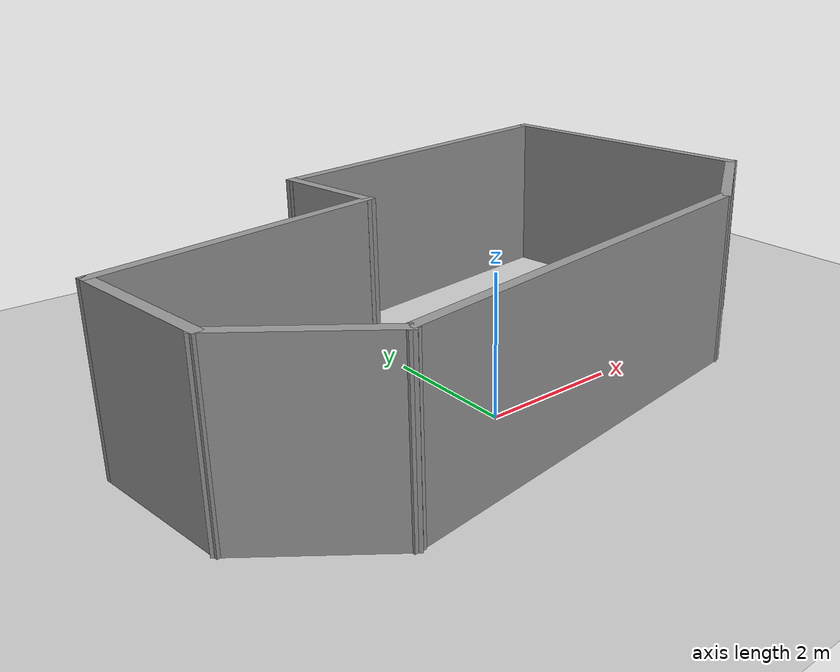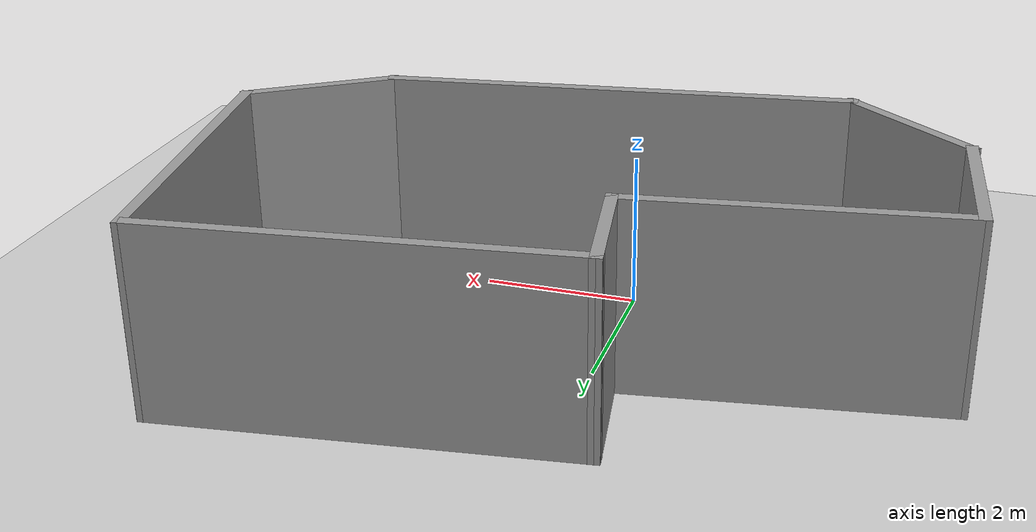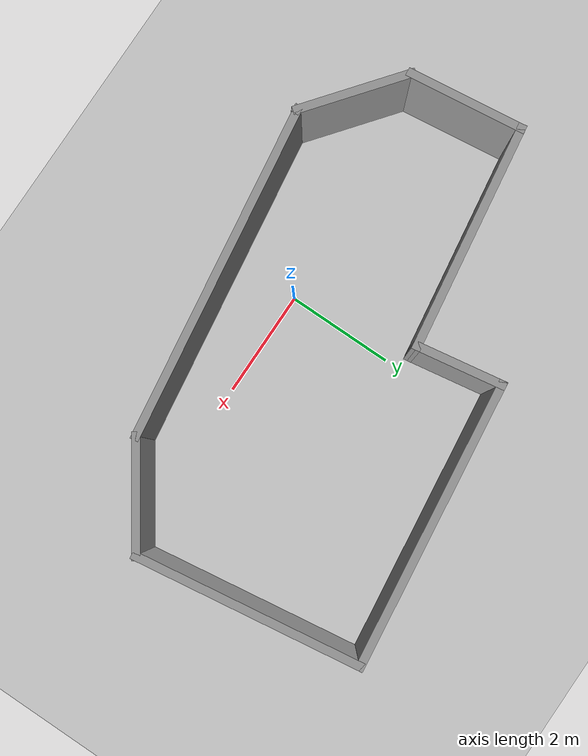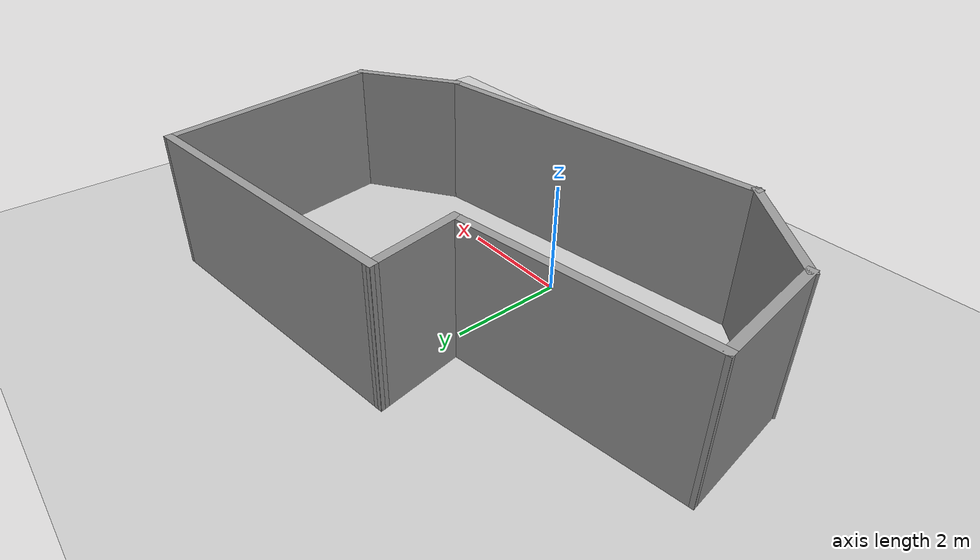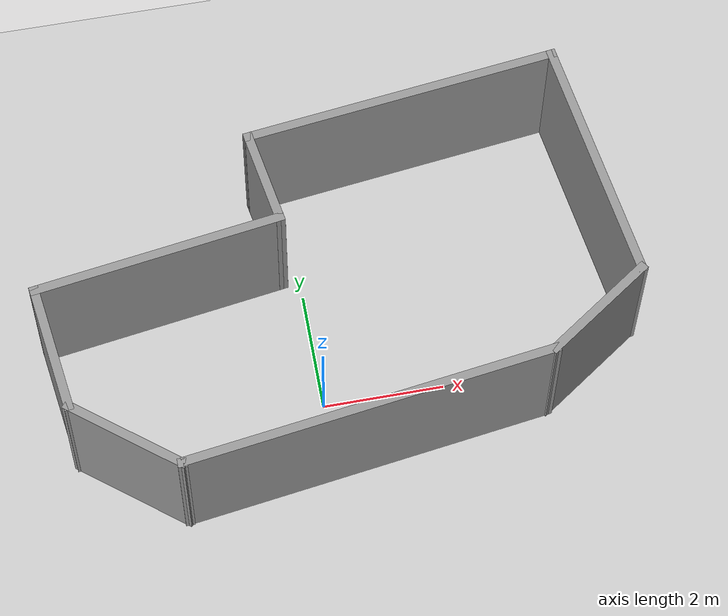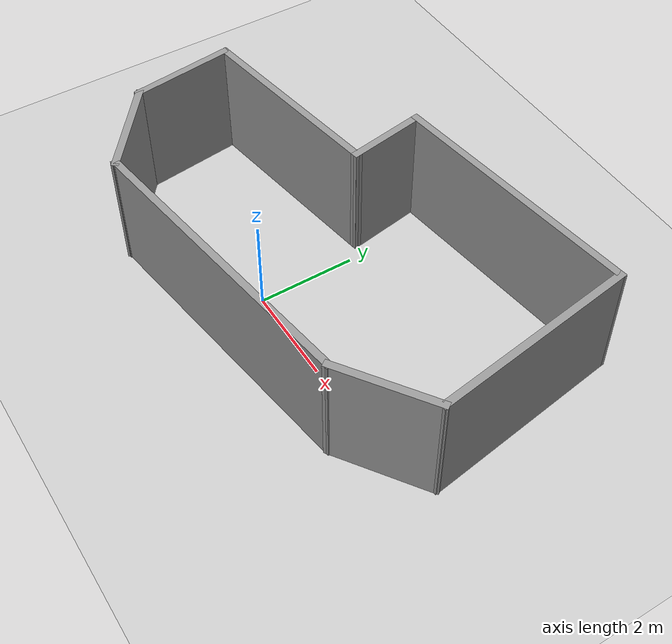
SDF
<sdf version="1.7">
 <world name="default">
  <light name="sun" type="directional">
   <pose>0 0 10 0 -0 0</pose>
   <diffuse>0.8 0.8 0.8 1</diffuse>
   <specular>0.2 0.2 0.2 1</specular>
   <attenuation>
    <range>1000</range>
    <constant>0.9</constant>
    <linear>0.01</linear>
    <quadratic>0.001</quadratic>
   </attenuation>
   <direction>-0.5 0.1 -0.9</direction>
   <spot><inner_angle>0</inner_angle><outer_angle>0</outer_angle><falloff>0</falloff></spot>
  </light>
  <model name="ground_plane">
   <static>1</static>
   <link name="link">
    <collision name="collision">
     <geometry><plane><normal>0 0 1</normal><size>100 100</size></plane></geometry>
     <surface><friction><ode><mu>100</mu><mu2>50</mu2></ode></friction></surface>
    </collision>
    <visual name="visual">
     <cast_shadows>0</cast_shadows>
     <geometry><plane><normal>0 0 1</normal><size>100 100</size></plane></geometry>
     <material>
      <script><uri>file://media/materials/scripts/gazebo.material</uri><name>Gazebo/Grey</name></script>
     </material>
    </visual>
   </link>
  </model>
  <gravity>0 0 -9.8</gravity>
  <magnetic_field>6e-06 2.3e-05 -4.2e-05</magnetic_field>
  <atmosphere type="adiabatic"/>
  <physics type="ode">
   <max_step_size>0.001</max_step_size>
   <real_time_factor>1</real_time_factor>
   <real_time_update_rate>1000</real_time_update_rate>
  </physics>
  <scene><ambient>0.4 0.4 0.4 1</ambient><background>0.7 0.7 0.7 1</background><shadows>1</shadows></scene>
  <audio><device>default</device></audio>
  <spherical_coordinates>
   <surface_model>EARTH_WGS84</surface_model>
   <latitude_deg>0</latitude_deg>
   <longitude_deg>0</longitude_deg>
   <elevation>0</elevation>
   <heading_deg>0</heading_deg>
  </spherical_coordinates>
  <model name="testmap">
   <pose>0.45199 1.43899 0 0 -0 0</pose>
   <link name="Wall_0">
    <collision name="Wall_0_Collision">
     <geometry><box><size>6.18433 0.15 2.5</size></box></geometry>
     <pose>0 0 1.25 0 -0 0</pose>
    </collision>
    <visual name="Wall_0_Visual">
     <pose>0 0 1.25 0 -0 0</pose>
     <geometry><box><size>6.18433 0.15 2.5</size></box></geometry>
     <material>
      <script><uri>file://media/materials/scripts/gazebo.material</uri><name>Gazebo/Grey</name></script>
      <ambient>1 1 1 1</ambient>
     </material>
     <meta><layer>0</layer></meta>
    </visual>
    <pose>0.130232 -2.58011 0 0 -0 0.142074</pose>
   </link>
   <link name="Wall_1">
    <collision name="Wall_1_Collision">
     <geometry><box><size>2.13417 0.15 2.5</size></box></geometry>
     <pose>0 0 1.25 0 -0 0</pose>
    </collision>
    <visual name="Wall_1_Visual">
     <pose>0 0 1.25 0 -0 0</pose>
     <geometry><box><size>2.13417 0.15 2.5</size></box></geometry>
     <material>
      <script><uri>file://media/materials/scripts/gazebo.material</uri><name>Gazebo/Grey</name></script>
      <ambient>1 1 1 1</ambient>
     </material>
     <meta><layer>0</layer></meta>
    </visual>
    <pose>3.93363 -1.58956 0 0 -0 0.603858</pose>
   </link>
   <link name="Wall_2">
    <collision name="Wall_2_Collision">
     <geometry><box><size>4.26555 0.15 2.5</size></box></geometry>
     <pose>0 0 1.25 0 -0 0</pose>
    </collision>
    <visual name="Wall_2_Visual">
     <pose>0 0 1.25 0 -0 0</pose>
     <geometry><box><size>4.26555 0.15 2.5</size></box></geometry>
     <material>
      <script><uri>file://media/materials/scripts/gazebo.material</uri><name>Gazebo/Grey</name></script>
      <ambient>1 1 1 1</ambient>
     </material>
     <meta><layer>0</layer></meta>
    </visual>
    <pose>4.45514 1.01026 0 0 -0 1.71471</pose>
   </link>
   <link name="Wall_3">
    <collision name="Wall_3_Collision">
     <geometry><box><size>5.34863 0.15 2.5</size></box></geometry>
     <pose>0 0 1.25 0 -0 0</pose>
    </collision>
    <visual name="Wall_3_Visual">
     <pose>0 0 1.25 0 -0 0</pose>
     <geometry><box><size>5.34863 0.15 2.5</size></box></geometry>
     <material>
      <script><uri>file://media/materials/scripts/gazebo.material</uri><name>Gazebo/Grey</name></script>
      <ambient>1 1 1 1</ambient>
     </material>
     <meta><layer>0</layer></meta>
    </visual>
    <pose>1.58095 2.72294 0 0 -0 -3.01669</pose>
   </link>
   <link name="Wall_4">
    <collision name="Wall_4_Collision">
     <geometry><box><size>1.69768 0.15 2.5</size></box></geometry>
     <pose>0 0 1.25 0 -0 0</pose>
    </collision>
    <visual name="Wall_4_Visual">
     <pose>0 0 1.25 0 -0 0</pose>
     <geometry><box><size>1.69768 0.15 2.5</size></box></geometry>
     <material>
      <script><uri>file://media/materials/scripts/gazebo.material</uri><name>Gazebo/Grey</name></script>
      <ambient>1 1 1 1</ambient>
     </material>
     <meta><layer>0</layer></meta>
    </visual>
    <pose>-0.8709 1.6358 0 0 -0 -1.40565</pose>
   </link>
   <link name="Wall_5">
    <collision name="Wall_5_Collision">
     <geometry><box><size>4.22018 0.15 2.5</size></box></geometry>
     <pose>0 0 1.25 0 -0 0</pose>
    </collision>
    <visual name="Wall_5_Visual">
     <pose>0 0 1.25 0 -0 0</pose>
     <geometry><box><size>4.22018 0.15 2.5</size></box></geometry>
     <material>
      <script><uri>file://media/materials/scripts/gazebo.material</uri><name>Gazebo/Grey</name></script>
      <ambient>1 1 1 1</ambient>
     </material>
     <meta><layer>0</layer></meta>
    </visual>
    <pose>-2.75652 0.572335 0 0 -0 -2.99356</pose>
   </link>
   <link name="Wall_6">
    <collision name="Wall_6_Collision">
     <geometry><box><size>2.21818 0.15 2.5</size></box></geometry>
     <pose>0 0 1.25 0 -0 0</pose>
    </collision>
    <visual name="Wall_6_Visual">
     <pose>0 0 1.25 0 -0 0</pose>
     <geometry><box><size>2.21818 0.15 2.5</size></box></geometry>
     <material>
      <script><uri>file://media/materials/scripts/gazebo.material</uri><name>Gazebo/Grey</name></script>
      <ambient>1 1 1 1</ambient>
     </material>
     <meta><layer>0</layer></meta>
    </visual>
    <pose>-4.63861 -0.753609 0 0 -0 -1.44403</pose>
   </link>
   <link name="Wall_7">
    <collision name="Wall_7_Collision">
     <geometry><box><size>2.16989 0.15 2.5</size></box></geometry>
     <pose>0 0 1.25 0 -0 0</pose>
    </collision>
    <visual name="Wall_7_Visual">
     <pose>0 0 1.25 0 -0 0</pose>
     <geometry><box><size>2.16989 0.15 2.5</size></box></geometry>
     <material>
      <script><uri>file://media/materials/scripts/gazebo.material</uri><name>Gazebo/Grey</name></script>
      <ambient>1 1 1 1</ambient>
     </material>
     <meta><layer>0</layer></meta>
    </visual>
    <pose>-3.71339 -2.40292 0 0 -0 -0.66541</pose>
   </link>
   <link name="Wall_8">
    <collision name="Wall_8_Collision">
     <geometry><box><size>0.15 0.15 2.5</size></box></geometry>
     <pose>0 0 1.25 0 -0 0</pose>
    </collision>
    <visual name="Wall_8_Visual">
     <pose>0 0 1.25 0 -0 0</pose>
     <geometry><box><size>0.15 0.15 2.5</size></box></geometry>
     <material>
      <script><uri>file://media/materials/scripts/gazebo.material</uri><name>Gazebo/Grey</name></script>
      <ambient>1 1 1 1</ambient>
     </material>
     <meta><layer>0</layer></meta>
    </visual>
    <pose>-2.9189 -3.02644 0 0 -0 0</pose>
   </link>
   <static>1</static>
  </model>
 </world>
</sdf>
